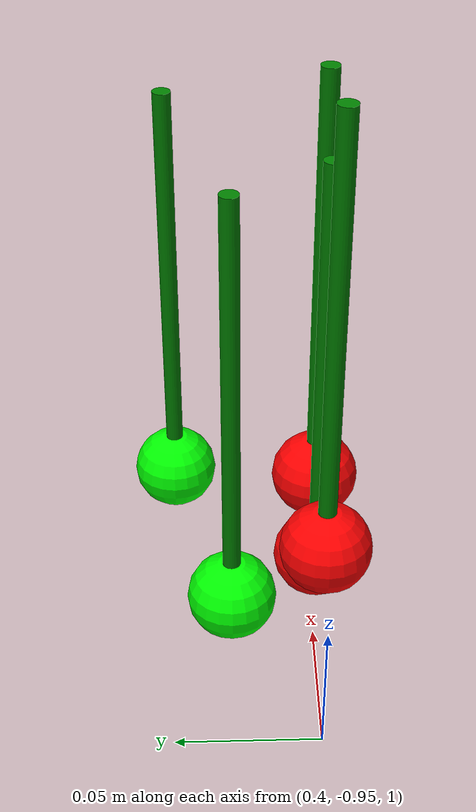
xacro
<?xml version="1.0" encoding="utf-8"?>
<robot xmlns:xacro="http://www.ros.org/wiki/xacro" name="straw_cluster1">

<xacro:arg name="tf_prefix" default=""/>

<link name="world"/>

<!-- cluster21-->
<link name="$(arg tf_prefix)/yball_stem11">
  <gravity>1</gravity>
  <inertial>
    <origin xyz="0 0 0" rpy="0 0 0"/>
    <mass value=".00001"/>
    <inertia ixx="0.00001" ixy="0.0" ixz="0.0" iyy="0.00001" iyz="0.0" izz="0.00001" />
  </inertial>
  <visual><geometry><sphere radius=".00001"/></geometry></visual>
  <collision><geometry><sphere radius=".00001"/></geometry></collision>
</link>
<gazebo reference="$(arg tf_prefix)/yball_stem11">
  <material>Gazebo/Green</material>
</gazebo>

<joint name="$(arg tf_prefix)/stem11y" type="revolute" >
  <parent link="world" />
  <child link="$(arg tf_prefix)/yball_stem11" />
  <origin xyz="0.45 -0.95 1.19" rpy="0 0 0"/>
  <axis xyz="0 1 0" />
  <dynamics damping="0.0001" friction="0.0002"/>
  <limit
      lower="-${pi}" upper="${pi}"
      effort="1" velocity="0.1" />
</joint>

<link name="$(arg tf_prefix)/xball_stem11">
  <gravity>1</gravity>
  <inertial>
    <origin xyz="0 0 0" rpy="0 0 0"/>
    <mass value=".00001"/>
    <inertia ixx="0.0000004" ixy="0.0" ixz="0.0" iyy="0.0000004" iyz="0.0" izz="0.0000004" />
  </inertial>
  <visual><geometry><sphere radius=".00001"/></geometry></visual>
  <collision><geometry><sphere radius=".00001"/></geometry></collision>
</link>
<gazebo reference="$(arg tf_prefix)/xball_stem11">
  <material>Gazebo/Green</material>
</gazebo>

<joint name="$(arg tf_prefix)/stem11x" type="revolute" >
  <parent link="$(arg tf_prefix)/yball_stem11"/>
  <child link="$(arg tf_prefix)/xball_stem11"/>
  <origin xyz="0 0 0" rpy="0 0 0"/>
  <axis xyz="1 0 0" />
  <dynamics damping="0.0001" friction="0.0002" />
  <limit
      lower="-${pi}" upper="${pi}"
      effort="1" velocity="0.1" />
</joint>

<!-- Define stem of straw11 -->
<link name="$(arg tf_prefix)/stem11">
  <gravity>1</gravity>
  <inertial>
    <origin xyz="0 0 0" rpy="0 0 0"/>
    <mass value="0.001"/>
    <inertia
      ixx="0.0000000005" ixy="0.0" ixz="0.0"
      iyy="0.0000000005" iyz="0.0"
      izz="0.0000000005"/>
  </inertial>
  <collision>
    <geometry>
	<cylinder length="0.15" radius="0.003"/>
    </geometry>
    <material name="green">
      <color rgba="0 ${128/255} 0 1"/>
    </material>
    <origin xyz="0 0 -0.075" rpy="0 0 0"/>
  </collision>
  <visual>
    <geometry>
		<cylinder length="0.15" radius="0.003"/>
    </geometry>
    <material name="green">
      <color rgba="0 ${128/255} 0 1"/>
    </material>
    <origin xyz="0 0 -0.075" rpy="0 0 0"/>
  </visual>
</link>
<gazebo reference="$(arg tf_prefix)/stem11">
  <mu1>0.01</mu1>
  <mu2>0.01</mu2>
  <selfCollide>true</selfCollide>
  <maxContacts>2</maxContacts>
  <minDepth>0</minDepth>
  <maxVel>0.01</maxVel>
  <kp  value="1" />
  <kd  value="0.1" />
  <material>Gazebo/Green</material>
</gazebo>

<joint name="$(arg tf_prefix)/xball_stem11" type="fixed">
  <parent link="$(arg tf_prefix)/xball_stem11"/>
  <child link="$(arg tf_prefix)/stem11"/>
  <origin xyz="0 0 0" rpy="0 0 0"/>
</joint>

<!-- Define straw11 -->
<link name="$(arg tf_prefix)/straw11">
  <gravity>1</gravity>
  <inertial>
    <origin xyz="0 0 0" rpy="0 0 0"/>
    <mass value="0.002"/>
    <inertia
      ixx="0.00000018" ixy="0.0" ixz="0.0"
      iyy="0.00000018" iyz="0.0"
      izz="0.00000018"/>
  </inertial>
  <collision>
    <geometry>
    <sphere radius="0.015"/>
    </geometry>
  </collision>
  <visual>
    <geometry>
	<sphere radius="0.015"/>
    </geometry>
    <material name="Red">
      <color rgba="1 0 0 1"/>
    </material>
  </visual>
</link>
<gazebo reference="$(arg tf_prefix)/straw11">
  <mu1>0.01</mu1>
  <mu2>0.01</mu2>
  <selfCollide>true</selfCollide>
  <maxContacts>2</maxContacts>
  <minDepth>0</minDepth>
  <maxVel>0.01</maxVel>
  <kp  value="1" />
  <kd  value="0.1" />
  <material>Gazebo/Red</material>
</gazebo>

<joint name="$(arg tf_prefix)/straw11_stem11" type="revolute">
  <parent link="$(arg tf_prefix)/stem11"/>
  <child link="$(arg tf_prefix)/straw11"/>
  <origin xyz="0 0 -0.15" rpy="0 0 0"/>
  <axis xyz="0 1 0" />
  <dynamics damping="0.0000001" friction="0.0000002"/>
  <limit
      lower="-${pi}" upper="${pi}"
      effort="0.01" velocity="0.1" />
</joint>

<!-- cluster22-->
<link name="$(arg tf_prefix)/yball_stem12">
  <gravity>1</gravity>
  <inertial>
    <origin xyz="0 0 0" rpy="0 0 0"/>
    <mass value=".00001"/>
    <inertia ixx="0.0000004" ixy="0.0" ixz="0.0" iyy="0.0000004" iyz="0.0" izz="0.0000004" />
  </inertial>
  <visual><geometry><sphere radius=".00001"/></geometry></visual>
  <collision><geometry><sphere radius=".00001"/></geometry></collision>
</link>
<gazebo reference="$(arg tf_prefix)/yball_stem12">
  <material>Gazebo/Green</material>
</gazebo>

<joint name="$(arg tf_prefix)/stem12y" type="revolute" >
  <parent link="world" />
  <child link="$(arg tf_prefix)/yball_stem12" />
  <origin xyz="0.42 -0.95 1.22" rpy="0 0 0"/>
  <axis xyz="0 1 0" />
  <dynamics damping="0.0001" friction="0.0002"/>
  <limit
      lower="-${pi}" upper="${pi}"
      effort="1" velocity="0.1" />
</joint>

<link name="$(arg tf_prefix)/xball_stem12">
  <gravity>1</gravity>
  <inertial>
    <origin xyz="0 0 0" rpy="0 0 0"/>
    <mass value=".00001"/>
    <inertia ixx="0.0000004" ixy="0.0" ixz="0.0" iyy="0.0000004" iyz="0.0" izz="0.0000004" />
  </inertial>
  <visual><geometry><sphere radius=".00001"/></geometry></visual>
  <collision><geometry><sphere radius=".00001"/></geometry></collision>
</link>
<gazebo reference="$(arg tf_prefix)/xball_stem12">
  <material>Gazebo/Green</material>
</gazebo>

<joint name="$(arg tf_prefix)/stem12x" type="revolute" >
  <parent link="$(arg tf_prefix)/yball_stem12"/>
  <child link="$(arg tf_prefix)/xball_stem12"/>
  <origin xyz="0 0 0" rpy="0 0 0"/>
  <axis xyz="1 0 0" />
  <dynamics damping="0.0001" friction="0.0002" />
  <limit
      lower="-${pi}" upper="${pi}"
      effort="1" velocity="0.1" />
</joint>

<!-- Define stem of straw5 -->
<link name="$(arg tf_prefix)/stem12">
  <gravity>1</gravity>
  <inertial>
    <origin xyz="0 0 0" rpy="0 0 0"/>
    <mass value="0.001"/>
    <inertia
      ixx="0.0000000005" ixy="0.0" ixz="0.0"
      iyy="0.0000000005" iyz="0.0"
      izz="0.0000000005"/>
  </inertial>
  <collision>
    <geometry>
	<cylinder length="0.15" radius="0.003"/>
    </geometry>
    <material name="green">
      <color rgba="0 ${128/255} 0 1"/>
    </material>
    <origin xyz="0 0 -0.075" rpy="0 0 0"/>
  </collision>
  <visual>
    <geometry>
		<cylinder length="0.15" radius="0.003"/>
    </geometry>
    <material name="green">
      <color rgba="0 ${128/255} 0 1"/>
    </material>
    <origin xyz="0 0 -0.075" rpy="0 0 0"/>
  </visual>
</link>
<gazebo reference="$(arg tf_prefix)/stem12">
  <mu1>0.01</mu1>
  <mu2>0.01</mu2>
  <selfCollide>true</selfCollide>
  <maxContacts>2</maxContacts>
  <minDepth>0</minDepth>
  <maxVel>0.01</maxVel>
  <kp  value="1" />
  <kd  value="0.1" />
  <material>Gazebo/Green</material>
</gazebo>

<joint name="$(arg tf_prefix)/xball_stem12" type="fixed">
  <parent link="$(arg tf_prefix)/xball_stem12"/>
  <child link="$(arg tf_prefix)/stem12"/>
  <origin xyz="0 0 0" rpy="0 0 0"/>
</joint>

<!-- Define straw5 -->
<link name="$(arg tf_prefix)/straw12">
  <gravity>1</gravity>
  <inertial>
    <origin xyz="0 0 0" rpy="0 0 0"/>
    <mass value="0.002"/>
    <inertia
      ixx="0.00000018" ixy="0.0" ixz="0.0"
      iyy="0.00000018" iyz="0.0"
      izz="0.00000018"/>
  </inertial>
  <collision>
    <geometry>
    <sphere radius="0.015"/>
    </geometry>
  </collision>
  <visual>
    <geometry>
	<sphere radius="0.015"/>
    </geometry>
    <material name="Red">
      <color rgba="1 0 0 1"/>
    </material>
  </visual>
</link>
<gazebo reference="$(arg tf_prefix)/straw12">
  <mu1>0.01</mu1>
  <mu2>0.01</mu2>
  <selfCollide>true</selfCollide>
  <maxContacts>2</maxContacts>
  <minDepth>0</minDepth>
  <maxVel>0.01</maxVel>
  <kp  value="1" />
  <kd  value="0.1" />
  <material>Gazebo/Red</material>
</gazebo>

<joint name="$(arg tf_prefix)/straw12_stem12" type="revolute">
  <parent link="$(arg tf_prefix)/stem12"/>
  <child link="$(arg tf_prefix)/straw12"/>
  <origin xyz="0 0 -0.15" rpy="0 0 0"/>
  <axis xyz="0 1 0" />
  <dynamics damping="0.0000001" friction="0.0000002"/>
  <limit
      lower="-${pi}" upper="${pi}"
      effort="0.01" velocity="0.1" />
</joint>

<!-- cluster23-->
<link name="$(arg tf_prefix)/yball_stem13">
  <gravity>1</gravity>
  <inertial>
    <origin xyz="0 0 0" rpy="0 0 0"/>
    <mass value=".00001"/>
    <inertia ixx="0.0000004" ixy="0.0" ixz="0.0" iyy="0.0000004" iyz="0.0" izz="0.0000004" />
  </inertial>
  <visual><geometry><sphere radius=".00001"/></geometry></visual>
  <collision><geometry><sphere radius=".00001"/></geometry></collision>
</link>
<gazebo reference="$(arg tf_prefix)/yball_stem13">
  <material>Gazebo/Green</material>
</gazebo>

<joint name="$(arg tf_prefix)/stem13y" type="revolute" >
  <parent link="world" />
  <child link="$(arg tf_prefix)/yball_stem13" />
  <origin xyz="0.47 -0.95 1.21" rpy="0 0 0"/>
  <axis xyz="0 1 0" />
  <dynamics damping="0.0001" friction="0.0002"/>
  <limit
      lower="-${pi}" upper="${pi}"
      effort="1" velocity="0.1" />
</joint>

<link name="$(arg tf_prefix)/xball_stem13">
  <gravity>1</gravity>
  <inertial>
    <origin xyz="0 0 0" rpy="0 0 0"/>
    <mass value=".00001"/>
    <inertia ixx="0.0000004" ixy="0.0" ixz="0.0" iyy="0.0000004" iyz="0.0" izz="0.0000004" />
  </inertial>
  <visual><geometry><sphere radius=".00001"/></geometry></visual>
  <collision><geometry><sphere radius=".00001"/></geometry></collision>
</link>
<gazebo reference="$(arg tf_prefix)/xball_stem6">
  <material>Gazebo/Green</material>
</gazebo>

<joint name="$(arg tf_prefix)/stem13x" type="revolute" >
  <parent link="$(arg tf_prefix)/yball_stem13"/>
  <child link="$(arg tf_prefix)/xball_stem13"/>
  <origin xyz="0 0 0" rpy="0 0 0"/>
  <axis xyz="1 0 0" />
  <dynamics damping="0.0001" friction="0.0002" />
  <limit
      lower="-${pi}" upper="${pi}"
      effort="1" velocity="0.1" />
</joint>

<!-- Define stem of straw3 -->
<link name="$(arg tf_prefix)/stem13">
  <gravity>1</gravity>
  <inertial>
    <origin xyz="0 0 0" rpy="0 0 0"/>
    <mass value="0.0001"/>
    <inertia
      ixx="0.0000000005" ixy="0.0" ixz="0.0"
      iyy="0.0000000005" iyz="0.0"
      izz="0.0000000005"/>
  </inertial>
  <collision>
    <geometry>
	<cylinder length="0.15" radius="0.003"/>
    </geometry>
    <material name="green">
      <color rgba="0 ${128/255} 0 1"/>
    </material>
    <origin xyz="0 0 -0.075" rpy="0 0 0"/>
  </collision>
  <visual>
    <geometry>
	<cylinder length="0.15" radius="0.003"/>
    </geometry>
    <material name="green">
      <color rgba="0 ${128/255} 0 1"/>
    </material>
    <origin xyz="0 0 -0.075" rpy="0 0 0"/>
  </visual>
</link>
<gazebo reference="$(arg tf_prefix)/stem13">
  <mu1>0.01</mu1>
  <mu2>0.01</mu2>
  <selfCollide>true</selfCollide>
  <maxContacts>2</maxContacts>
  <minDepth>0</minDepth>
  <maxVel>0.01</maxVel>
  <kp  value="1" />
  <kd  value="0.1" />
  <material>Gazebo/Green</material>
</gazebo>

<joint name="$(arg tf_prefix)/xball_stem13" type="fixed">
  <parent link="$(arg tf_prefix)/xball_stem13"/>
  <child link="$(arg tf_prefix)/stem13"/>
  <origin xyz="0 0 0" rpy="0 0 0"/>
</joint>

<!-- Define straw2 -->
<link name="$(arg tf_prefix)/straw13">
  <gravity>1</gravity>
  <inertial>
    <origin xyz="0 0 0" rpy="0 0 0"/>
    <mass value="0.002"/>
    <inertia
      ixx="0.00000018" ixy="0.0" ixz="0.0"
      iyy="0.00000018" iyz="0.0"
      izz="0.00000018"/>
  </inertial>
  <collision>
    <geometry>
    <sphere radius="0.015"/>
    </geometry>
  </collision>
  <visual>
    <geometry>
	<sphere radius="0.015"/>
    </geometry>
    <material name="Red">
      <color rgba="1 0 0 1"/>
    </material>
  </visual>
</link>
<gazebo reference="$(arg tf_prefix)/straw13">
  <mu1>0.01</mu1>
  <mu2>0.01</mu2>
  <selfCollide>true</selfCollide>
  <maxContacts>2</maxContacts>
  <minDepth>0</minDepth>
  <maxVel>0.01</maxVel>
  <kp  value="1" />
  <kd  value="0.1" />
  <material>Gazebo/Red</material>
</gazebo>

<joint name="$(arg tf_prefix)/straw13_stem13" type="revolute">
  <parent link="$(arg tf_prefix)/stem13"/>
  <child link="$(arg tf_prefix)/straw13"/>
  <origin xyz="0 0 -0.15" rpy="0 0 0"/>
  <axis xyz="0 1 0" />
  <dynamics damping="0.0000001" friction="0.0000002"/>
  <limit
      lower="-${pi}" upper="${pi}"
      effort="0.01" velocity="0.1" />
</joint>

<!-- cluster24-->
<link name="$(arg tf_prefix)/yball_stem14">
  <gravity>1</gravity>
  <inertial>
    <origin xyz="0 0 0" rpy="0 0 0"/>
    <mass value=".00001"/>
    <inertia ixx="0.0000004" ixy="0.0" ixz="0.0" iyy="0.0000004" iyz="0.0" izz="0.0000004" />
  </inertial>
  <visual><geometry><sphere radius=".00001"/></geometry></visual>
  <collision><geometry><sphere radius=".00001"/></geometry></collision>
</link>
<gazebo reference="$(arg tf_prefix)/yball_stem14">
  <material>Gazebo/Green</material>
</gazebo>

<joint name="$(arg tf_prefix)/stem14y" type="revolute" >
  <parent link="world" />
  <child link="$(arg tf_prefix)/yball_stem14" />
  <origin xyz="0.5 -0.9 1.19" rpy="0 0 0"/>
  <axis xyz="0 1 0" />
  <dynamics damping="0.0001" friction="0.0002"/>
  <limit
      lower="-${pi}" upper="${pi}"
      effort="1" velocity="0.1" />
</joint>

<link name="$(arg tf_prefix)/xball_stem14">
  <gravity>1</gravity>
  <inertial>
    <origin xyz="0 0 0" rpy="0 0 0"/>
    <mass value=".00001"/>
    <inertia ixx="0.0000004" ixy="0.0" ixz="0.0" iyy="0.0000004" iyz="0.0" izz="0.0000004" />
  </inertial>
  <visual><geometry><sphere radius=".00001"/></geometry></visual>
  <collision><geometry><sphere radius=".00001"/></geometry></collision>
</link>
<gazebo reference="$(arg tf_prefix)/xball_stem14">
  <material>Gazebo/Green</material>
</gazebo>

<joint name="$(arg tf_prefix)/stem14x" type="revolute" >
  <parent link="$(arg tf_prefix)/yball_stem14"/>
  <child link="$(arg tf_prefix)/xball_stem14"/>
  <origin xyz="0 0 0" rpy="0 0 0"/>
  <axis xyz="1 0 0" />
  <dynamics damping="0.0001" friction="0.0002" />
  <limit
      lower="-${pi}" upper="${pi}"
      effort="1" velocity="0.1" />
</joint>

<!-- Define stem of straw3 -->
<link name="$(arg tf_prefix)/stem14">
  <gravity>1</gravity>
  <inertial>
    <origin xyz="0 0 0" rpy="0 0 0"/>
    <mass value="0.0001"/>
    <inertia
      ixx="0.0000000005" ixy="0.0" ixz="0.0"
      iyy="0.0000000005" iyz="0.0"
      izz="0.0000000005"/>
  </inertial>
  <collision>
    <geometry>
	<cylinder length="0.15" radius="0.003"/>
    </geometry>
    <material name="green">
      <color rgba="0 ${128/255} 0 1"/>
    </material>
    <origin xyz="0 0 -0.075" rpy="0 0 0"/>
  </collision>
  <visual>
    <geometry>
	<cylinder length="0.15" radius="0.003"/>
    </geometry>
    <material name="green">
      <color rgba="0 ${128/255} 0 1"/>
    </material>
    <origin xyz="0 0 -0.075" rpy="0 0 0"/>
  </visual>
</link>
<gazebo reference="$(arg tf_prefix)/stem14">
  <mu1>0.01</mu1>
  <mu2>0.01</mu2>
  <selfCollide>true</selfCollide>
  <maxContacts>2</maxContacts>
  <minDepth>0</minDepth>
  <maxVel>0.01</maxVel>
  <kp  value="1" />
  <kd  value="0.1" />
  <material>Gazebo/Green</material>
</gazebo>

<joint name="$(arg tf_prefix)/xball_stem14" type="fixed">
  <parent link="$(arg tf_prefix)/xball_stem14"/>
  <child link="$(arg tf_prefix)/stem14"/>
  <origin xyz="0 0 0" rpy="0 0 0"/>
</joint>

<!-- Define straw2 -->
<link name="$(arg tf_prefix)/straw14">
  <gravity>1</gravity>
  <inertial>
    <origin xyz="0 0 0" rpy="0 0 0"/>
    <mass value="0.002"/>
    <inertia
      ixx="0.00000018" ixy="0.0" ixz="0.0"
      iyy="0.00000018" iyz="0.0"
      izz="0.00000018"/>
  </inertial>
  <collision>
    <geometry>
    <sphere radius="0.015"/>
    </geometry>
  </collision>
  <visual>
    <geometry>
	<sphere radius="0.015"/>
    </geometry>
    <material name="Green">
      <color rgba="0 1 0 1"/>
    </material>
  </visual>
</link>
<gazebo reference="$(arg tf_prefix)/straw14">
  <mu1>0.01</mu1>
  <mu2>0.01</mu2>
  <selfCollide>true</selfCollide>
  <maxContacts>2</maxContacts>
  <minDepth>0</minDepth>
  <maxVel>0.01</maxVel>
  <kp  value="1" />
  <kd  value="0.1" />
  <material>Gazebo/Green</material>
</gazebo>

<joint name="$(arg tf_prefix)/straw14_stem14" type="revolute">
  <parent link="$(arg tf_prefix)/stem14"/>
  <child link="$(arg tf_prefix)/straw14"/>
  <origin xyz="0 0 -0.15" rpy="0 0 0"/>
  <axis xyz="0 1 0" />
  <dynamics damping="0.0000001" friction="0.0000002"/>
  <limit
      lower="-${pi}" upper="${pi}"
      effort="0.01" velocity="0.1" />
</joint>

<!-- cluster25-->
<link name="$(arg tf_prefix)/yball_stem15">
  <gravity>1</gravity>
  <inertial>
    <origin xyz="0 0 0" rpy="0 0 0"/>
    <mass value=".00001"/>
    <inertia ixx="0.0000004" ixy="0.0" ixz="0.0" iyy="0.0000004" iyz="0.0" izz="0.0000004" />
  </inertial>
  <visual><geometry><sphere radius=".00001"/></geometry></visual>
  <collision><geometry><sphere radius=".00001"/></geometry></collision>
</link>
<gazebo reference="$(arg tf_prefix)/yball_stem15">
  <material>Gazebo/Green</material>
</gazebo>

<joint name="$(arg tf_prefix)/stem15y" type="revolute" >
  <parent link="world" />
  <child link="$(arg tf_prefix)/yball_stem15" />
  <origin xyz="0.43 -0.92 1.19" rpy="0 0 0"/>
  <axis xyz="0 1 0" />
  <dynamics damping="0.0001" friction="0.0002"/>
  <limit
      lower="-${pi}" upper="${pi}"
      effort="1" velocity="0.1" />
</joint>

<link name="$(arg tf_prefix)/xball_stem15">
  <gravity>1</gravity>
  <inertial>
    <origin xyz="0 0 0" rpy="0 0 0"/>
    <mass value=".00001"/>
    <inertia ixx="0.0000004" ixy="0.0" ixz="0.0" iyy="0.0000004" iyz="0.0" izz="0.0000004" />
  </inertial>
  <visual><geometry><sphere radius=".00001"/></geometry></visual>
  <collision><geometry><sphere radius=".00001"/></geometry></collision>
</link>
<gazebo reference="$(arg tf_prefix)/xball_stem15">
  <material>Gazebo/Green</material>
</gazebo>

<joint name="$(arg tf_prefix)/stem6x" type="revolute" >
  <parent link="$(arg tf_prefix)/yball_stem15"/>
  <child link="$(arg tf_prefix)/xball_stem15"/>
  <origin xyz="0 0 0" rpy="0 0 0"/>
  <axis xyz="1 0 0" />
  <dynamics damping="0.0001" friction="0.0002" />
  <limit
      lower="-${pi}" upper="${pi}"
      effort="1" velocity="0.1" />
</joint>

<!-- Define stem of straw3 -->
<link name="$(arg tf_prefix)/stem15">
  <gravity>1</gravity>
  <inertial>
    <origin xyz="0 0 0" rpy="0 0 0"/>
    <mass value="0.0001"/>
    <inertia
      ixx="0.0000000005" ixy="0.0" ixz="0.0"
      iyy="0.0000000005" iyz="0.0"
      izz="0.0000000005"/>
  </inertial>
  <collision>
    <geometry>
	<cylinder length="0.15" radius="0.003"/>
    </geometry>
    <material name="green">
      <color rgba="0 ${128/255} 0 1"/>
    </material>
    <origin xyz="0 0 -0.075" rpy="0 0 0"/>
  </collision>
  <visual>
    <geometry>
	<cylinder length="0.15" radius="0.003"/>
    </geometry>
    <material name="green">
      <color rgba="0 ${128/255} 0 1"/>
    </material>
    <origin xyz="0 0 -0.075" rpy="0 0 0"/>
  </visual>
</link>
<gazebo reference="$(arg tf_prefix)/stem15">
  <mu1>0.01</mu1>
  <mu2>0.01</mu2>
  <selfCollide>true</selfCollide>
  <maxContacts>2</maxContacts>
  <minDepth>0</minDepth>
  <maxVel>0.01</maxVel>
  <kp  value="1" />
  <kd  value="0.1" />
  <material>Gazebo/Green</material>
</gazebo>

<joint name="$(arg tf_prefix)/xball_stem15" type="fixed">
  <parent link="$(arg tf_prefix)/xball_stem15"/>
  <child link="$(arg tf_prefix)/stem15"/>
  <origin xyz="0 0 0" rpy="0 0 0"/>
</joint>

<!-- Define straw2 -->
<link name="$(arg tf_prefix)/straw15">
  <gravity>1</gravity>
  <inertial>
    <origin xyz="0 0 0" rpy="0 0 0"/>
    <mass value="0.002"/>
    <inertia
      ixx="0.00000018" ixy="0.0" ixz="0.0"
      iyy="0.00000018" iyz="0.0"
      izz="0.00000018"/>
  </inertial>
  <collision>
    <geometry>
    <sphere radius="0.015"/>
    </geometry>
  </collision>
  <visual>
    <geometry>
	<sphere radius="0.015"/>
    </geometry>
    <material name="green">
      <color rgba="0 1 0 1"/>
    </material>
  </visual>
</link>
<gazebo reference="$(arg tf_prefix)/straw15">
  <mu1>0.01</mu1>
  <mu2>0.01</mu2>
  <selfCollide>true</selfCollide>
  <maxContacts>2</maxContacts>
  <minDepth>0</minDepth>
  <maxVel>0.01</maxVel>
  <kp  value="1" />
  <kd  value="0.1" />
  <material>Gazebo/Green</material>
</gazebo>

<joint name="$(arg tf_prefix)/straw15_stem15" type="revolute">
  <parent link="$(arg tf_prefix)/stem15"/>
  <child link="$(arg tf_prefix)/straw15"/>
  <origin xyz="0 0 -0.15" rpy="0 0 0"/>
  <axis xyz="0 1 0" />
  <dynamics damping="0.0000001" friction="0.0000002"/>
  <limit
      lower="-${pi}" upper="${pi}"
      effort="0.01" velocity="0.1" />
</joint>

</robot>
